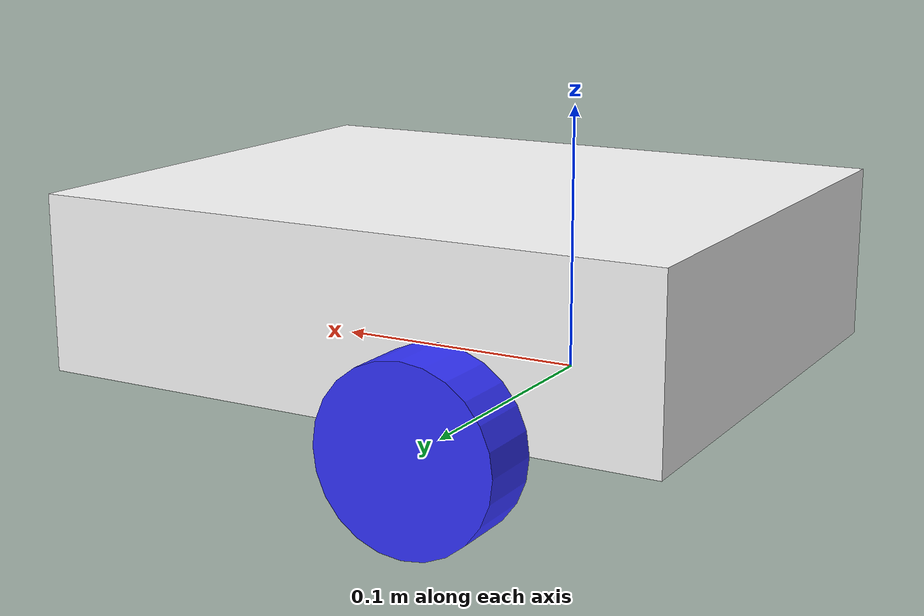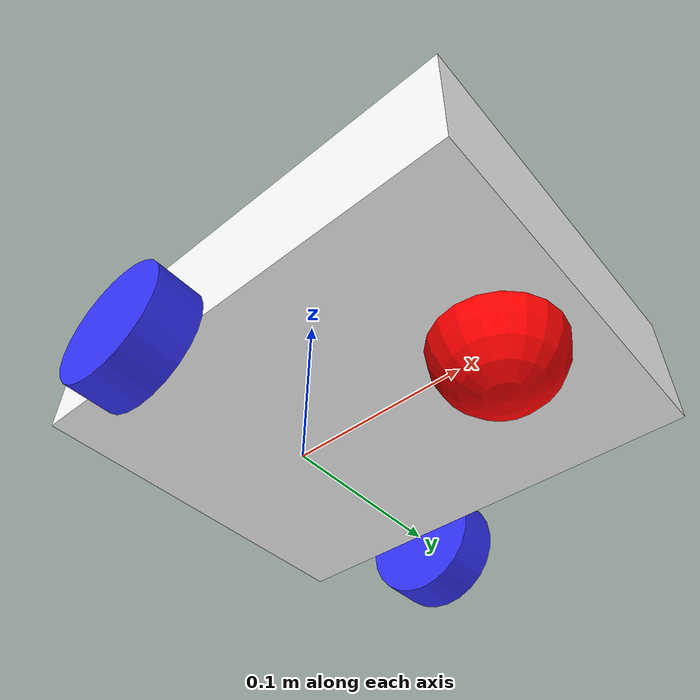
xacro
<?xml version="1.0"?>
<robot xmlns:xacro="http://www.ros.org/wiki/xacro">
  <xacro:include filename="inertial_macro.xacro"/>

 <material name="white">
    <color rgba=" 1 1 1 1" />
   </material>
   <material name="orange">
    <color rgba=" 1 0.3 0.1 1" />
   </material>
   <material name="blue">
    <color rgba=" 0.2 0.2 1 1" />
   </material>
   <material name="black">
    <color rgba=" 0 0 0 1" />
   </material>
   <material name="red">
    <color rgba=" 1 0 0 1" />
   </material>

<!-- BASE LINK -->
   <link name="base_link">

   </link>

   <joint name="chassis_joint" type="fixed">
    <parent link="base_link"/>
    <child link="chassis_link"/>
    <origin xyz="-0.08 0.0 0.0" rpy="0.0 0.0 0.0"/>
   </joint>

  <!-- CHASSIS LINK  -->
  <link name="chassis_link">
    <visual>
      <geometry>
        <box size="0.247 0.2 0.068"/>
      </geometry>
      <material name="white" />
      <origin xyz="0.1235 0.0 0.034" rpy="0.0 0.0 0.0"/>
    </visual>
     <collision>
        <geometry>
          <box size="0.247 0.2 0.068"/>
        </geometry>
        <origin xyz="0.1235 0.0 0.034" rpy="0.0 0.0 0.0"/>
      </collision>
      <xacro:inertial_box mass="0.1" x="0.247" y="0.2" z="0.068">
        <origin xyz="0.1235 0.0 0.034" rpy="0.0 0.0 0.0"/>
      </xacro:inertial_box >
  </link>

  <gazebo reference="chassis">
    <material>Gazebo/White</material>
  </gazebo>

  <!-- LEFT WHEEL -->
  <joint name="left_wheel_joint" type="continuous">
    <parent link="base_link"/>
    <child link="left_wheel_link"/>
    <axis xyz="0 0 1"/>
    <origin xyz="0 0.1125 0" rpy="-${pi/2} 0 0"/>
  </joint>

  <link name="left_wheel_link">
    <visual>
    <geometry>
      <cylinder radius="0.03375" length="0.025"/>
    </geometry>
    <origin xyz="0.0 0.0 0.0" rpy="0.0 0.0 0.0"/>
    <material name="blue" />
    </visual>
    <collision>
      <geometry>
        <cylinder radius="0.03375" length="0.025"/>
      </geometry>
      <origin xyz="0.0 0.0 0.0" rpy="0.0 0.0 0.0"/>
    </collision>
    <xacro:inertial_cylinder mass="0.5" radius="0.0675" length="0.025" >
      <origin xyz="0.0 0.0 0.0" rpy="0.0 0.0 0.0"/>
    </xacro:inertial_cylinder >
  </link>
  <gazebo reference="left_wheel_link">
    <material>Gazebo/Blue</material>
  </gazebo>

    <!-- RIGHT WHEEL -->
  <joint name="right_wheel_joint" type="continuous">
    <parent link="base_link"/>
    <child link="right_wheel_link"/>
    <axis xyz="0 0 -1"/>
    <origin xyz="0 -0.1125  0" rpy="${pi/2} 0 0"/>
  </joint>

  <link name="right_wheel_link">
    <visual>
    <geometry>
      <cylinder radius="0.03375" length="0.025"/>
    </geometry>
    <origin xyz="0.0 0.0 0.0" rpy="0.0 0.0 0.0"/>
    <material name="blue" />
    </visual>
    <collision>
      <geometry>
        <cylinder radius="0.03375" length="0.025"/>
      </geometry>
      <origin xyz="0.0 0.0 0.0" rpy="0.0 0.0 0.0"/>
    </collision>
     <xacro:inertial_cylinder mass="0.5" radius="0.0675" length="0.025" >
           <origin xyz="0.0 0.0 0.0" rpy="0.0 0.0 0.0"/>
     </xacro:inertial_cylinder >
  </link>

  <gazebo reference="right_wheel_link">
    <material>Gazebo/Blue</material>
  </gazebo>

  <!-- CASTER WHEEL LINK -->

  <joint name="caster_wheel_joint" type="fixed">
    <parent link="chassis_link"/>
    <child link="caster_wheel_link"/>
    <origin xyz="0.185 0.0 0.0" rpy="0.0 0.0 0.0"/>
  </joint>

  <link name="caster_wheel_link">
    <visual>
      <geometry>
        <sphere radius="0.03375"/>
      </geometry>
      <material name="red" />
    <origin xyz="0.016875 0.0 0.0" rpy="0.0 0.0 0.0"/>
    </visual>
    <collision>
      <origin xyz="0.016875 0.0 0.0" rpy="0.0 0.0 0.0"/>
      <geometry>
        <sphere radius="0.03375"/>
      </geometry>
    </collision>
     <xacro:inertial_sphere mass="0.2" radius="0.03375">
      <origin xyz="0.016875 0.0 0.0" rpy="0.0 0.0 0.0"/>
     </xacro:inertial_sphere>
  </link>

  <gazebo reference="caster_wheel_link">
    <material>Gazebo/Black</material>
    <mu1  value="0.05"/>
    <mu2  value="0.05"/>
  </gazebo>

</robot>
